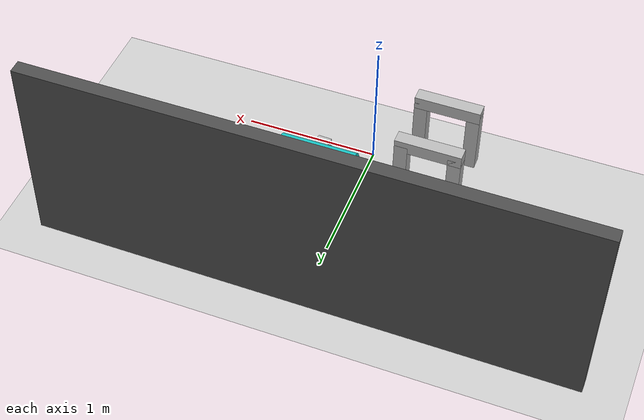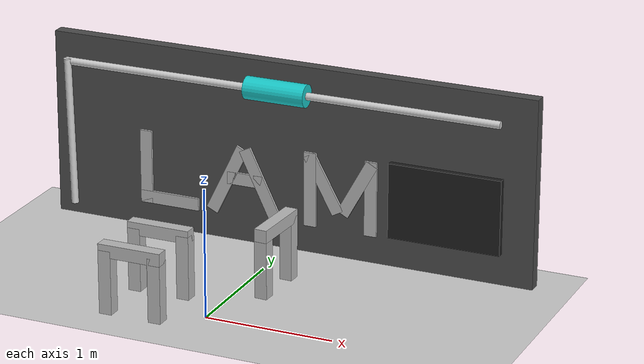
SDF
<?xml version="1.0" ?>
<sdf version="1.6">
  <world name="lam_challenge_world">

    <!-- Basic Physics and Lighting -->
    <physics type="ode"><max_step_size>0.001</max_step_size><real_time_factor>1</real_time_factor><real_time_update_rate>1000</real_time_update_rate></physics>
    <include><uri>model://sun</uri></include>
    <include><uri>model://line_arena</uri><pose>0 -1.2 0 0 0 0</pose></include>

    <!-- Display Wall Model -->
    <model name="display_wall">
      <static>true</static>
      <pose>0 1.5 0.75 3.14159 0 0</pose>
      <link name="wall_base"><visual name="visual"><geometry><box><size>4.0 0.10 1.5</size></box></geometry><material><ambient>0.3 0.3 0.3 1</ambient><diffuse>0.3 0.3 0.3 1</diffuse></material></visual><collision name="collision"><geometry><box><size>4.0 0.15 1.5</size></box></geometry></collision></link>

      <!-- "LAM" LETTERS NOW START PERMANENTLY GREEN -->
      <link name="L_vertical_led"><pose>-1.2 0.08 0.25 0 0 0</pose><visual name="visual"><geometry><box><size>0.1 0.02 0.6</size></box></geometry><material><emissive>0 1 0 1</emissive></material></visual></link>
      <link name="L_horizontal_led"><pose>-1.0 0.08 0.5 0 0 0</pose><visual name="visual"><geometry><box><size>0.5 0.02 0.1</size></box></geometry><material><emissive>0 1 0 1</emissive></material></visual></link>
      <link name="A_left_leg_led"><pose>-0.5 0.08 0.25 0 -0.45 0</pose><visual name="visual"><geometry><box><size>0.1 0.02 0.6</size></box></geometry><material><emissive>0 1 0 1</emissive></material></visual></link>
      <link name="A_right_leg_led"><pose>-0.22 0.08 0.25 0 0.45 0</pose><visual name="visual"><geometry><box><size>0.1 0.02 0.6</size></box></geometry><material><emissive>0 1 0 1</emissive></material></visual></link>
      <link name="A_crossbar_led"><pose>-0.35 0.08 0.23 0 0 0</pose><visual name="visual"><geometry><box><size>0.3 0.02 0.1</size></box></geometry><material><emissive>0 1 0 1</emissive></material></visual></link>
      <link name="M_left_leg_led"><pose>0.2 0.08 0.22 0 0 0</pose><visual name="visual"><geometry><box><size>0.1 0.02 0.6</size></box></geometry><material><emissive>0 1 0 1</emissive></material></visual></link>
      <link name="M_right_leg_led"><pose>0.7 0.08 0.22 0 0 0</pose><visual name="visual"><geometry><box><size>0.1 0.02 0.6</size></box></geometry><material><emissive>0 1 0 1</emissive></material></visual></link>
      <link name="M_middle_left_led"><pose>0.31 0.08 0.16 0 0.5 0</pose><visual name="visual"><geometry><box><size>0.1 0.02 0.5</size></box></geometry><material><emissive>0 1 0 1</emissive></material></visual></link>
      <link name="M_middle_right_led"><pose>0.59 0.08 0.16 0 -0.5 0</pose><visual name="visual"><geometry><box><size>0.1 0.02 0.5</size></box></geometry><material><emissive>0 1 0 1</emissive></material></visual></link>

      <!-- LCD Panel starts black, ready for the image -->
      <link name="lcd_panel">
        <pose>1.3 0.08 0.2 0 0 0</pose>
        <visual name="visual">
          <geometry><box><size>0.9 0.05 0.6</size></box></geometry>
          <material><script><name>Gazebo/Black</name></script></material>
        </visual>
      </link>
    </model>

    <model name='peristaltic_pump_detailed'>
      <static>true</static>
      <pose>-0.054574 1.363129 1.150157 0 0 0</pose>
      <link name='rail'><pose>0 0 0.15 0 1.5707 0</pose><visual name='visual'><geometry><cylinder><radius>0.03</radius><length>3.6</length></cylinder></geometry><material><ambient>0.8 0.8 0.8 1</ambient><diffuse>0.8 0.8 0.8 1</diffuse></material></visual></link>
      <!-- PUMP HEAD NOW STARTS PERMANENTLY BRIGHT CYAN -->
      <link name='pump_head'>
        <pose>0 0 0.15 0 1.5707 0</pose>
        <visual name='visual'><geometry><cylinder><radius>0.09</radius><length>0.5</length></cylinder></geometry><material><ambient>0.1 0.8 0.8 1</ambient><diffuse>0.1 0.8 0.8 1</diffuse></material></visual>
      </link>
    </model>

    <!-- Other Models (Unchanged) -->
    <model name='pipe_section'><static>true</static><pose>-1.823149 1.343845 0.725473 0 1.545488 0</pose><link name='pipe_body'><pose>0 0 0 0 1.5707 0</pose><visual name='visual'><geometry><cylinder><radius>0.03</radius><length>1.2</length></cylinder></geometry><material><ambient>0.8 0.8 0.8 1</ambient><diffuse>0.8 0.8 0.8 1</diffuse></material></visual></link></model>
    <model name="gate_1"><static>true</static><pose>-0.495738 -0.200421 0 0 0 1.57</pose><link name="left_post"><pose>0 0.2 0.25 0 0 0</pose><visual name="visual"><geometry><box><size>0.1 0.1 0.5</size></box></geometry></visual><collision name="collision"><geometry><box><size>0.1 0.1 0.5</size></box></geometry></collision></link><link name="right_post"><pose>0 -0.2 0.25 0 0 0</pose><visual name="visual"><geometry><box><size>0.1 0.1 0.5</size></box></geometry></visual><collision name="collision"><geometry><box><size>0.1 0.1 0.5</size></box></geometry></collision></link><link name="top_bar"><pose>0 0 0.5 0 0 0</pose><visual name="visual"><geometry><box><size>0.1 0.5 0.1</size></box></geometry></visual><collision name="collision"><geometry><box><size>0.1 0.5 0.1</size></box></geometry></collision></link></model>
    <model name="gate_2"><static>true</static><pose>-0.500026 0.273412 0 0 0 1.569473</pose><link name="left_post"><pose>0 0.2 0.25 0 0 0</pose><visual name="visual"><geometry><box><size>0.1 0.1 0.5</size></box></geometry></visual><collision name="collision"><geometry><box><size>0.1 0.1 0.5</size></box></geometry></collision></link><link name="right_post"><pose>0 -0.2 0.25 0 0 0</pose><visual name="visual"><geometry><box><size>0.1 0.1 0.5</size></box></geometry></visual><collision name="collision"><geometry><box><size>0.1 0.1 0.5</size></box></geometry></collision></link><link name="top_bar"><pose>0 0 0.5 0 0 0</pose><visual name="visual"><geometry><box><size>0.1 0.5 0.1</size></box></geometry></visual><collision name="collision"><geometry><box><size>0.1 0.5 0.1</size></box></geometry></collision></link></model>
    <model name="gate_3"><static>true</static><pose>0.232638 0.721076 0 0 0 3.089002</pose><link name="left_post"><pose>0 0.2 0.25 0 0 0</pose><visual name="visual"><geometry><box><size>0.1 0.1 0.5</size></box></geometry></visual><collision name="collision"><geometry><box><size>0.1 0.1 0.5</size></box></geometry></collision></link><link name="right_post"><pose>0 -0.2 0.25 0 0 0</pose><visual name="visual"><geometry><box><size>0.1 0.1 0.5</size></box></geometry></visual><collision name="collision"><geometry><box><size>0.1 0.1 0.5</size></box></geometry></collision></link><link name="top_bar"><pose>0 0 0.5 0 0 0</pose><visual name="visual"><geometry><box><size>0.1 0.5 0.1</size></box></geometry></visual><collision name="collision"><geometry><box><size>0.1 0.5 0.1</size></box></geometry></collision></link></model>

    <!-- The C++ Plugin is still needed for the dynamic logic -->
    <plugin name="visual_controller_plugin" filename="libvisual_controller_plugin.so">
      <pump_visual>peristaltic_pump_detailed::pump_head::visual</pump_visual>
      <lcd_visual>display_wall::lcd_panel::visual</lcd_visual>
      <letter_l_visual>display_wall::L_vertical_led::visual</letter_l_visual>
      <letter_l_visual>display_wall::L_horizontal_led::visual</letter_l_visual>
      <letter_a_visual>display_wall::A_left_leg_led::visual</letter_a_visual>
      <letter_a_visual>display_wall::A_right_leg_led::visual</letter_a_visual>
      <letter_a_visual>display_wall::A_crossbar_led::visual</letter_a_visual>
      <letter_m_visual>display_wall::M_left_leg_led::visual</letter_m_visual>
      <letter_m_visual>display_wall::M_right_leg_led::visual</letter_m_visual>
      <letter_m_visual>display_wall::M_middle_left_led::visual</letter_m_visual>
      <letter_m_visual>display_wall::M_middle_right_led::visual</letter_m_visual>
    </plugin>
  </world>
</sdf>

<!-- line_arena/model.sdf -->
<sdf version="1.6">
  <model name="line_arena">
    <static>true</static>
    <link name="arena_surface">
      <!-- Collision plane -->
      <collision name="collision">
        <geometry>
          <plane>
            <normal>0 0 1</normal>
            <size>10 10</size> <!-- Adjust arena size if needed -->
          </plane>
        </geometry>
        <surface>
          <contact>
            <collide_bitmask>0x01</collide_bitmask>
          </contact>
        </surface>
      </collision>

      <!-- Visual with arena texture -->
      <visual name="visual">
        <geometry>
          <plane>
            <normal>0 0 1</normal>
            <size>10 10</size>
          </plane>
        </geometry>
        <material>
          <script>
            <uri>model://line_arena/materials/scripts</uri>
            <uri>model://line_arena/materials/textures</uri>
            <name>line_arena/line_arena</name>
          </script>
        </material>
      </visual>
    </link>
  </model>
</sdf>
